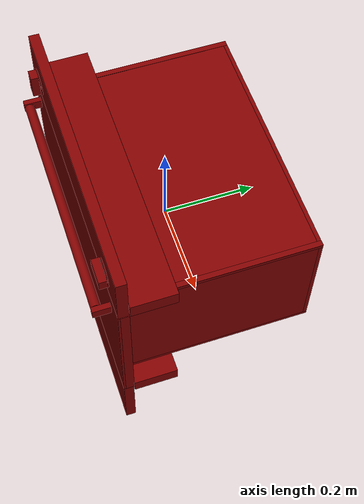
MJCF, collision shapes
<?xml version='1.0' encoding='UTF-8'?>
<mujoco model="model">
  <option timestep="0.002" gravity="0.0 0.0 -9.81"/>
  <compiler angle="radian"/>
  <asset>
    <mesh file="visuals/door.obj" name="door_vis"/>
    <mesh file="visuals/door_Clear.obj" name="door_Clear_vis"/>
    <mesh file="visuals/knob_temp.obj" name="knob_temp_vis"/>
    <mesh file="visuals/knob_time.obj" name="knob_time_vis"/>
    <mesh file="visuals/Body001.obj" name="Body001_vis"/>
    <mesh file="visuals/rack0.obj" name="rack0_vis"/>
    <mesh file="visuals/rack1.obj" name="rack1_vis"/>
    <texture file="visuals/T_BC001.png" name="Body001_material" type="2d"/>
    <material name="Body001_material" rgba="1 1 1 1.0" texture="Body001_material" shininess="0.1" specular="5"/>
    <texture file="visuals/T_BC001.png" name="door_material" type="2d"/>
    <material name="door_material" rgba="1 1 1 1.0" texture="door_material" shininess="0.1" specular="5"/>
    <texture file="visuals/T_BC001.png" name="door_Clear_material" type="2d"/>
    <material name="door_Clear_material" rgba="1 1 1 0.800000011920929" texture="door_Clear_material" shininess="0.4472135901451111" specular="0.3103448502657381"/>
    <texture file="visuals/T_BC001.png" name="knob_temp_material" type="2d"/>
    <material name="knob_temp_material" rgba="1 1 1 1.0" texture="knob_temp_material" shininess="0.1" specular="5"/>
    <texture file="visuals/T_BC001.png" name="knob_time_material" type="2d"/>
    <material name="knob_time_material" rgba="1 1 1 1.0" texture="knob_time_material" shininess="0.1" specular="5"/>
    <texture file="visuals/T_BC001.png" name="rack0_material" type="2d"/>
    <material name="rack0_material" rgba="1 1 1 1.0" texture="rack0_material" shininess="0.1" specular="5"/>
    <texture file="visuals/T_BC001.png" name="rack1_material" type="2d"/>
    <material name="rack1_material" rgba="1 1 1 1.0" texture="rack1_material" shininess="0.1" specular="5"/>
  </asset>
  <default>
    <default class="visual">
      <geom conaffinity="0" contype="0" group="1" type="mesh"/>
    </default>
    <default class="collision">
      <geom group="0" rgba="0.5 0 0 0.5"/>
    </default>
    <default class="spawn">
      <geom group="0" rgba="1 1 1 0.5" contype="0" conaffinity="0"/>
      <site group="0" rgba="1 1 1 0.5"/>
    </default>
    <default class="region">
      <geom group="1" conaffinity="0" contype="0" rgba="0 1 0 0"/>
    </default>
  </default>
  <worldbody>
    <body>
      <body name="object">
        <geom mesh="Body001_vis" type="mesh" solimp="0.998 0.998 0.001" solref="0.001 1" friction="0.95 0.3 0.1" class="visual" material="Body001_material"/>
        <geom class="collision" type="box" pos="7.79158144723624e-05 -0.1804739087820053 0.23981153964996338" size="0.30510708689689636 0.011014057323336601 0.05975450202822685" quat="1.0 0.0 0.0 0.0"/>
        <geom class="collision" type="box" pos="7.790341624058783e-05 -0.12014007568359375 0.19170036911964417" size="0.305107057094574 0.047089219093322754 0.01675836369395256" quat="1.0 0.0 0.0 0.0"/>
        <geom class="collision" type="box" pos="7.790341624058783e-05 -0.11988695710897446 -0.152041494846344" size="0.305107057094574 0.04758719354867935 0.01675836369395256" quat="1.0 0.0 0.0 0.0"/>
        <geom class="collision" type="box" pos="7.78909889049828e-05 -0.18037006258964539 -0.2249213457107544" size="0.305107057094574 0.010665347799658775 0.07519154250621796" quat="1.0 0.0 0.0 0.0"/>
        <geom class="collision" type="box" pos="-0.000507748278323561 0.031343571841716766 -0.1075439304113388" size="0.27449434995651245 0.198704794049263 0.003962005954235792" quat="1.0 0.0 0.0 0.0"/>
        <geom class="collision" type="box" pos="-0.2688940763473511 0.03134363144636154 0.030271582305431366" size="0.006104165688157082 0.19870460033416748 0.14177905023097992" quat="1.0 0.0 0.0 0.0"/>
        <geom class="collision" type="box" pos="0.2681868374347687 0.031343646347522736 0.030271561816334724" size="0.005795927252620459 0.19870437681674957 0.14177894592285156" quat="1.0 0.0 0.0 0.0"/>
        <geom class="collision" type="box" pos="-0.000507748278323561 0.03134367987513542 0.16752858459949493" size="0.27449363470077515 0.19870418310165405 0.003935618791729212" quat="1.0 0.0 0.0 0.0"/>
        <geom class="collision" type="box" pos="-0.000507748278323561 0.22592750191688538 0.03041798062622547" size="0.27449339628219604 0.004117503762245178 0.1410476714372635" quat="1.0 0.0 0.0 0.0"/>
        <geom class="collision" type="box" pos="-0.2551068663597107 0.021002760156989098 0.04385047405958176" size="0.0076831309124827385 0.1596844494342804 0.00807445403188467" quat="1.0 0.0 0.0 0.0"/>
        <geom class="collision" type="box" pos="0.25444328784942627 0.021002786234021187 0.043555378913879395" size="0.007947701029479504 0.15968440473079681 0.008369549177587032" quat="1.0 0.0 0.0 0.0"/>
        <geom class="collision" type="box" pos="-0.2551068663597107 0.021002791821956635 -0.03532836213707924" size="0.007683137897402048 0.15968440473079681 0.008074465207755566" quat="1.0 0.0 0.0 0.0"/>
        <geom class="collision" type="box" pos="0.25444331765174866 0.021010922268033028 -0.035328350961208344" size="0.00794768612831831 0.15969255566596985 0.008074468933045864" quat="1.0 0.0 0.0 0.0"/>
        <body name="door">
          <joint axis="1.0 0.0 0.0" pos="-1.1059455573558807e-08 -0.19148799707181752 -0.14982020668685436" limited="true" name="door_joint" range="0.0 1.15" type="hinge" damping="1" frictionloss="1" armature="1" stiffness="2" springref="-1"/>
          <geom mesh="door_vis" type="mesh" solimp="0.998 0.998 0.001" solref="0.001 1" friction="0.95 0.3 0.1" class="visual" material="door_material"/>
          <geom class="collision" type="box" pos="-1.1059455573558807e-08 -0.17999255657196045 0.013588802888989449" size="0.30518367886543274 0.01149537693709135 0.16340842843055725" quat="1.0 0.0 0.0 0.0"/>
          <geom class="collision" type="box" pos="-0.2597992718219757 -0.2117980420589447 0.142881840467453" size="0.005828931927680969 0.018791288137435913 0.010802379809319973" quat="1.0 0.0 0.0 0.0"/>
          <geom class="collision" type="box" pos="0.2591598629951477 -0.2117980420589447 0.142881840467453" size="0.005828931927680969 0.018791288137435913 0.010802379809319973" quat="1.0 0.0 0.0 0.0"/>
          <geom class="collision" type="cylinder" pos="-0.0002326265093870461 -0.21987034380435944 0.1427207589149475" size="0.010430019348859787 0.25206828117370605" quat="0.7071068286895752 -0.0 0.7071067690849304 0.0" name="door_handle_main"/>
          <geom class="collision" type="box" pos="-0.00054371845908463 -0.17795288562774658 0.01177268847823143" size="0.3020324110984802 0.0028342439327389 0.15917429327964783" quat="1.0 0.0 0.0 0.0"/>
          <geom class="collision" type="box" pos="-1.1059455573558807e-08 -0.1892329752445221 0.013588802888989449" size="0.30518484115600586 0.0022550218272954226 0.1634090095758438" quat="1.0 0.0 0.0 0.0" name="door_main"/>
          <body name="door_Clear">
            <geom mesh="door_Clear_vis" type="mesh" solimp="0.998 0.998 0.001" solref="0.001 1" friction="0.95 0.3 0.1" class="visual" material="door_Clear_material"/>
            <geom class="collision" type="box" pos="-0.00054371845908463 -0.17795288562774658 0.01177268847823143" size="0.3020324110984802 0.0028342439327389 0.15917429327964783" quat="1.0 0.0 0.0 0.0"/>
          </body>
        </body>
        <body name="knob_temp">
          <joint axis="0.0 1.0 0.0" pos="0.23417630791664124 -0.19979844987392426 0.2351108342409134" limited="true" name="knob_temp_joint" range="0.0 3.141592653589793" type="hinge" damping="0.05" frictionloss="0.75" armature="1"/>
          <geom mesh="knob_temp_vis" type="mesh" solimp="0.998 0.998 0.001" solref="0.001 1" friction="0.95 0.3 0.1" class="visual" material="knob_temp_material"/>
          <geom class="collision" type="cylinder" pos="0.23396538197994232 -0.19386473298072815 0.23501262068748474" size="0.028744712471961975 0.0009850411443039775" quat="0.5000000596046448 -0.5000000596046448 0.4999999403953552 0.4999999701976776" friction="100 0.5 0.01"/>
          <geom class="collision" type="box" pos="0.23359186947345734 -0.2028939425945282 0.23503853380680084" size="0.02617475762963295 0.008165540173649788 0.011657128110527992" quat="1.0 0.0 0.0 0.0" name="knob_temp_main" friction="100 0.5 0.01"/>
        </body>
        <body name="knob_time">
          <joint axis="0.0 1.0 0.0" pos="-0.23664623498916626 -0.19979844987392426 0.2351108342409134" limited="true" name="knob_time_joint" range="0.0 3.9444441095071845" type="hinge" damping="0.05" frictionloss="0.75" armature="1"/>
          <geom mesh="knob_time_vis" type="mesh" solimp="0.998 0.998 0.001" solref="0.001 1" friction="0.95 0.3 0.1" class="visual" material="knob_time_material"/>
          <geom class="collision" type="cylinder" pos="-0.23694702982902527 -0.19386473298072815 0.2352123260498047" size="0.028744712471961975 0.0009850411443039775" quat="0.7071068286895752 -0.7071067690849304 -0.0 0.0" friction="100 0.5 0.01"/>
          <geom class="collision" type="box" pos="-0.23697294294834137 -0.2028939425945282 0.2348388135433197" size="0.01165713556110859 0.008165542967617512 0.02617477811872959" quat="1.0 0.0 0.0 0.0" name="knob_time_main" friction="100 0.5 0.01"/>
        </body>
        <body name="rack0">
          <geom class="region" name="reg_rack0" type="box" pos="0.0008465796709060669 0.010441862046718597 0.011815435718744993" size="0.23253318464756012 0.12156545168161392 0.02703447111323476"/>
          <joint axis="0.0 -1.0 0.0" pos="-0.00019900320330634713 0.010073499754071236 -0.02277500182390213" limited="true" name="rack0_joint" range="0.0 0.26" type="slide" damping="1" frictionloss="1" armature=".01" stiffness="0.05"/>
          <geom mesh="rack0_vis" type="mesh" solimp="0.998 0.998 0.001" solref="0.001 1" friction="0.95 0.3 0.1" class="visual" material="rack0_material"/>
          <geom class="collision" type="box" pos="-0.0009256050689145923 0.009680459275841713 -0.022622818127274513" size="0.25634822249412537 0.12666618824005127 0.0023985111620277166" quat="1.0 0.0 0.0 0.0"/>
        </body>
        <body name="rack1">
          <geom class="region" name="reg_rack1" type="box" pos="-0.0005372390151023865 0.022557001560926437 0.1046723872423172" size="0.17799860781431198 0.0924173386991024 0.05241417682170868"/>
          <joint axis="0.0 -1.0 0.0" pos="-0.00019949911802541465 0.020662503316998482 0.05219949781894684" limited="true" name="rack1_joint" range="0.0 0.26" type="slide" damping="1" frictionloss="1" armature=".01" stiffness="0.05"/>
          <geom mesh="rack1_vis" type="mesh" solimp="0.998 0.998 0.001" solref="0.001 1" friction="0.95 0.3 0.1" class="visual" material="rack1_material"/>
          <geom class="collision" type="box" pos="0.0003535874420776963 0.01977986842393875 0.04711519554257393" size="0.18624292314052582 0.10384196043014526 0.0010380652965977788" quat="1.0 0.0 0.0 0.0"/>
          <geom class="collision" type="box" pos="0.0003535874420776963 -0.11797607690095901 0.05598168447613716" size="0.2549816966056824 0.016404375433921814 0.002036658115684986" quat="1.0 0.0 0.0 0.0"/>
          <geom class="collision" type="box" pos="0.0003535874420776963 0.162602499127388 0.05598168447613716" size="0.2549816966056824 0.012596420012414455 0.002036656951531768" quat="1.0 0.0 0.0 0.0"/>
          <geom class="collision" type="box" pos="0.2386234998703003 0.02419474720954895 0.05598168447613716" size="0.01772559992969036 0.12528197467327118 0.0019596933852881193" quat="1.0 0.0 0.0 0.0"/>
          <geom class="collision" type="box" pos="-0.23787790536880493 0.02419474720954895 0.05598168447613716" size="0.01772560551762581 0.12528203427791595 0.0019596938509494066" quat="1.0 0.0 0.0 0.0"/>
          <geom class="collision" type="box" pos="-0.20319604873657227 0.024190183728933334 0.053060781210660934" size="0.017238622531294823 0.12505391240119934 0.0015357480151578784" quat="0.990329384803772 0.0 0.1387363225221634 0.0"/>
          <geom class="collision" type="box" pos="0.20454658567905426 0.024190183728933334 0.052264854311943054" size="0.017238622531294823 0.12505391240119934 0.0015357480151578784" quat="0.992330014705658 0.0 -0.12361680716276169 0.0"/>
          <geom class="collision" type="box" pos="0.0003535874420776963 0.13742923736572266 0.053719766438007355" size="0.22087109088897705 0.01306645292788744 0.002036644844338298" quat="0.9829722046852112 0.1837543249130249 0.0 0.0"/>
          <geom class="collision" type="box" pos="0.0003535874420776963 -0.09151864796876907 0.052081502974033356" size="0.22087109088897705 0.011247199960052967 0.0020366450771689415" quat="0.9696114659309387 -0.2446499913930893 -0.0 0.0"/>
        </body>
        <geom class="region" name="reg_int" type="box" pos="-0.0007569938898086548 0.025243282318115234 0.028600119054317474" size="0.24214033579826355 0.1910147795677185 0.12485501712560654"/>
        <geom class="region" name="reg_main" type="box" pos="-7.450580596923828e-09 0.01927849091589451 5.551115123125783e-17" size="0.3061849901676178 0.2117664942741394 0.30056600069999695"/>
      </body>
    </body>
  </worldbody>
  <actuator>
    <motor name="door_joint_actuator" joint="door_joint" gear="50"/>
    <motor name="knob_temp_joint_actuator" joint="knob_temp_joint" gear="50"/>
    <motor name="knob_time_joint_actuator" joint="knob_time_joint" gear="50"/>
    <motor name="rack0_joint_actuator" joint="rack0_joint" gear="50"/>
    <motor name="rack1_joint_actuator" joint="rack1_joint" gear="50"/>
  </actuator>
</mujoco>
